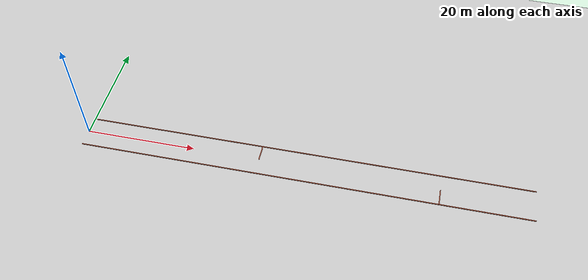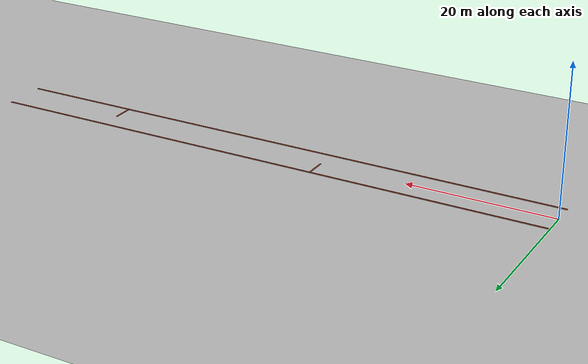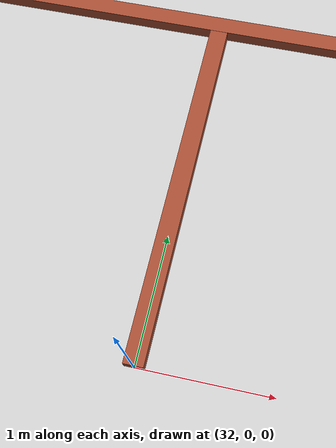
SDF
<sdf version="1.7">
 <world name="default">
  <light name="sun" type="directional">
   <pose>0 0 10 0 -0 0</pose>
   <diffuse>0.8 0.8 0.8 1</diffuse>
   <specular>0.2 0.2 0.2 1</specular>
   <attenuation>
    <range>1000</range>
    <constant>0.9</constant>
    <linear>0.01</linear>
    <quadratic>0.001</quadratic>
   </attenuation>
   <direction>-0.5 0.1 -0.9</direction>
   <spot><inner_angle>0</inner_angle><outer_angle>0</outer_angle><falloff>0</falloff></spot>
  </light>
  <model name="ground_plane">
   <static>1</static>
   <link name="link">
    <collision name="collision">
     <geometry><plane><normal>0 0 1</normal><size>100 100</size></plane></geometry>
     <surface><friction><ode><mu>100</mu><mu2>50</mu2></ode></friction></surface>
    </collision>
    <visual name="visual">
     <cast_shadows>0</cast_shadows>
     <geometry><plane><normal>0 0 1</normal><size>100 100</size></plane></geometry>
     <material>
      <script><uri>file://media/materials/scripts/gazebo.material</uri><name>Gazebo/Grey</name></script>
     </material>
    </visual>
   </link>
  </model>
  <gravity>0 0 -9.8</gravity>
  <magnetic_field>6e-06 2.3e-05 -4.2e-05</magnetic_field>
  <atmosphere type="adiabatic"/>
  <physics type="ode">
   <max_step_size>0.001</max_step_size>
   <real_time_factor>1</real_time_factor>
   <real_time_update_rate>1000</real_time_update_rate>
  </physics>
  <scene><ambient>0.4 0.4 0.4 1</ambient><background>0.7 0.7 0.7 1</background><shadows>1</shadows></scene>
  <spherical_coordinates>
   <surface_model>EARTH_WGS84</surface_model>
   <latitude_deg>0</latitude_deg>
   <longitude_deg>0</longitude_deg>
   <elevation>0</elevation>
   <heading_deg>0</heading_deg>
  </spherical_coordinates>
  <model name="Racing_Track">
   <pose>40 0 0 0 -0 0</pose>
   <link name="Wall_0">
    <collision name="Wall_0_Collision">
     <geometry><box><size>80.15 0.15 0.1</size></box></geometry>
     <pose>0 0 0.05 0 -0 0</pose>
    </collision>
    <visual name="Wall_0_Visual">
     <pose>0 0 0.05 0 -0 0</pose>
     <geometry><box><size>80.15 0.15 0.1</size></box></geometry>
     <material>
      <script><uri>file://media/materials/scripts/gazebo.material</uri><name>Gazebo/Bricks</name></script>
      <ambient>1 1 1 1</ambient>
     </material>
     <meta><layer>0</layer></meta>
    </visual>
    <pose>2e-06 3 0 0 -0 0</pose>
   </link>
   <link name="Wall_2">
    <collision name="Wall_2_Collision">
     <geometry><box><size>80.15 0.15 0.1</size></box></geometry>
     <pose>0 0 0.05 0 -0 0</pose>
    </collision>
    <visual name="Wall_2_Visual">
     <pose>0 0 0.05 0 -0 0</pose>
     <geometry><box><size>80.15 0.15 0.1</size></box></geometry>
     <material>
      <script><uri>file://media/materials/scripts/gazebo.material</uri><name>Gazebo/Bricks</name></script>
      <ambient>1 1 1 1</ambient>
     </material>
     <meta><layer>0</layer></meta>
    </visual>
    <pose>2e-06 -3 0 0 -0 0</pose>
   </link>
   <link name="Wall_5">
    <collision name="Wall_5_Collision">
     <geometry><box><size>2.925 0.15 0.1</size></box></geometry>
     <pose>0 0 0.05 0 -0 0</pose>
    </collision>
    <visual name="Wall_5_Visual">
     <pose>0 0 0.05 0 -0 0</pose>
     <geometry><box><size>2.925 0.15 0.1</size></box></geometry>
     <material>
      <script><uri>file://media/materials/scripts/gazebo.material</uri><name>Gazebo/Bricks</name></script>
      <ambient>1 1 1 1</ambient>
     </material>
     <meta><layer>0</layer></meta>
    </visual>
    <pose>-8 1.4625 0 0 -0 -1.5708</pose>
   </link>
   <link name="Wall_7">
    <collision name="Wall_7_Collision">
     <geometry><box><size>2.925 0.15 0.1</size></box></geometry>
     <pose>0 0 0.05 0 -0 0</pose>
    </collision>
    <visual name="Wall_7_Visual">
     <pose>0 0 0.05 0 -0 0</pose>
     <geometry><box><size>2.925 0.15 0.1</size></box></geometry>
     <material>
      <script><uri>file://media/materials/scripts/gazebo.material</uri><name>Gazebo/Bricks</name></script>
      <ambient>1 1 1 1</ambient>
     </material>
     <meta><layer>0</layer></meta>
    </visual>
    <pose>24 -1.4625 0 0 -0 -1.5708</pose>
   </link>
   <static>1</static>
  </model>
 </world>
</sdf>
